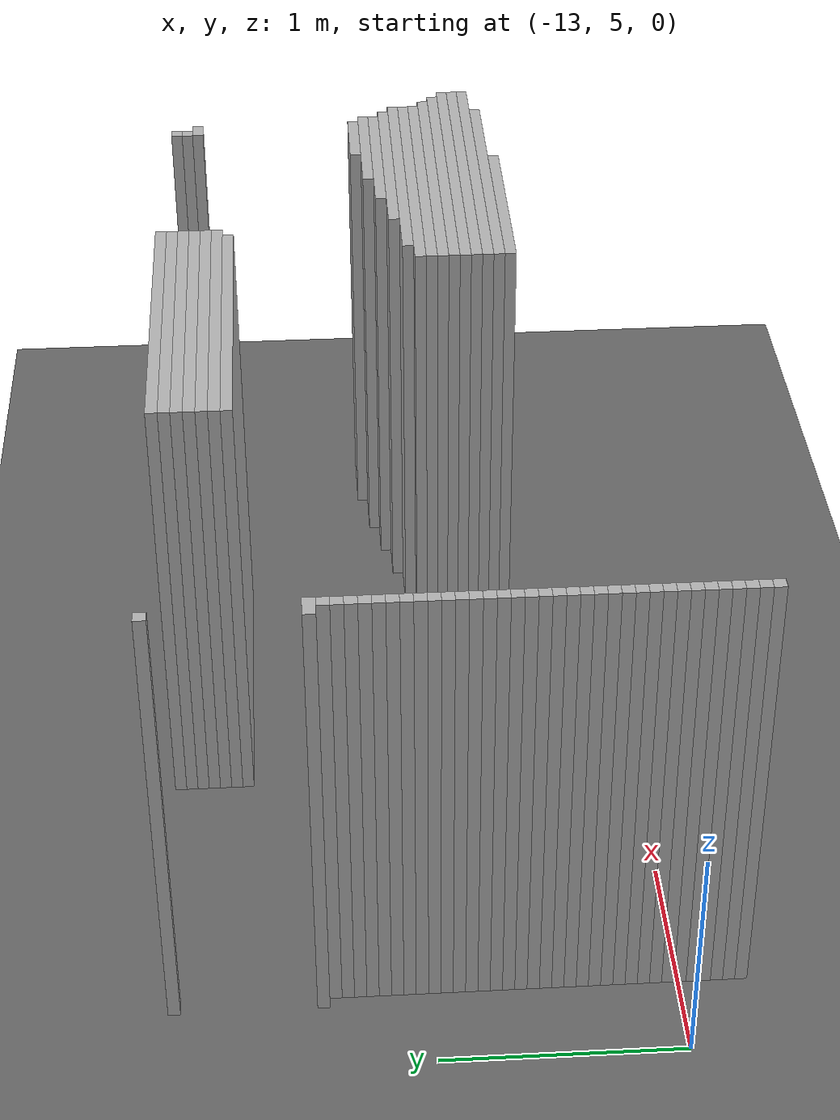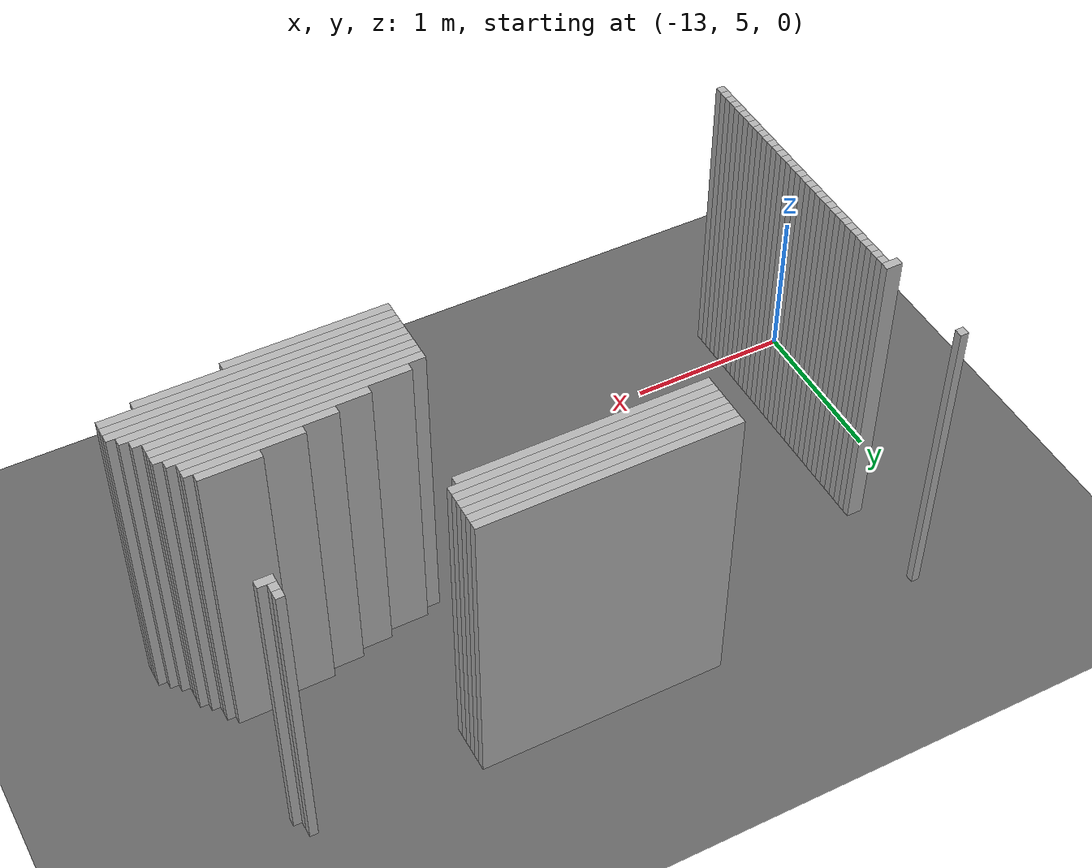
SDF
<sdf version="1.8">
 <world name="real_map">
  <model name="ground">
   <static>true</static>
   <link name="l">
    <collision name="c"><geometry><plane><normal>0 0 1</normal><size>100 100</size></plane></geometry></collision>
    <visual name="v">
     <geometry><plane><normal>0 0 1</normal><size>100 100</size></plane></geometry>
     <material><ambient>0.3 0.3 0.3 1</ambient><diffuse>0.4 0.4 0.4 1</diffuse></material>
    </visual>
   </link>
  </model>
  <model name="walls">
   <static>true</static>
   <link name="w642">
    <pose>-12.666 7.042 1.000 0 0 0</pose>
    <collision name="c"><geometry><box><size>0.050 0.050 2.000</size></box></geometry></collision>
    <visual name="v">
     <geometry><box><size>0.050 0.050 2.000</size></box></geometry>
     <material><ambient>0.7 0.7 0.7 1</ambient><diffuse>0.7 0.7 0.7 1</diffuse></material>
    </visual>
   </link>
   <link name="w643">
    <pose>-10.591 7.042 1.000 0 0 0</pose>
    <collision name="c"><geometry><box><size>1.500 0.050 2.000</size></box></geometry></collision>
    <visual name="v">
     <geometry><box><size>1.500 0.050 2.000</size></box></geometry>
     <material><ambient>0.7 0.7 0.7 1</ambient><diffuse>0.7 0.7 0.7 1</diffuse></material>
    </visual>
   </link>
   <link name="w648">
    <pose>-10.591 6.992 1.000 0 0 0</pose>
    <collision name="c"><geometry><box><size>1.500 0.050 2.000</size></box></geometry></collision>
    <visual name="v">
     <geometry><box><size>1.500 0.050 2.000</size></box></geometry>
     <material><ambient>0.7 0.7 0.7 1</ambient><diffuse>0.7 0.7 0.7 1</diffuse></material>
    </visual>
   </link>
   <link name="w649">
    <pose>-8.866 6.992 1.000 0 0 0</pose>
    <collision name="c"><geometry><box><size>0.050 0.050 2.000</size></box></geometry></collision>
    <visual name="v">
     <geometry><box><size>0.050 0.050 2.000</size></box></geometry>
     <material><ambient>0.7 0.7 0.7 1</ambient><diffuse>0.7 0.7 0.7 1</diffuse></material>
    </visual>
   </link>
   <link name="w653">
    <pose>-10.591 6.942 1.000 0 0 0</pose>
    <collision name="c"><geometry><box><size>1.500 0.050 2.000</size></box></geometry></collision>
    <visual name="v">
     <geometry><box><size>1.500 0.050 2.000</size></box></geometry>
     <material><ambient>0.7 0.7 0.7 1</ambient><diffuse>0.7 0.7 0.7 1</diffuse></material>
    </visual>
   </link>
   <link name="w654">
    <pose>-8.866 6.942 1.000 0 0 0</pose>
    <collision name="c"><geometry><box><size>0.050 0.050 2.000</size></box></geometry></collision>
    <visual name="v">
     <geometry><box><size>0.050 0.050 2.000</size></box></geometry>
     <material><ambient>0.7 0.7 0.7 1</ambient><diffuse>0.7 0.7 0.7 1</diffuse></material>
    </visual>
   </link>
   <link name="w658">
    <pose>-10.591 6.892 1.000 0 0 0</pose>
    <collision name="c"><geometry><box><size>1.500 0.050 2.000</size></box></geometry></collision>
    <visual name="v">
     <geometry><box><size>1.500 0.050 2.000</size></box></geometry>
     <material><ambient>0.7 0.7 0.7 1</ambient><diffuse>0.7 0.7 0.7 1</diffuse></material>
    </visual>
   </link>
   <link name="w659">
    <pose>-8.841 6.892 1.000 0 0 0</pose>
    <collision name="c"><geometry><box><size>0.100 0.050 2.000</size></box></geometry></collision>
    <visual name="v">
     <geometry><box><size>0.100 0.050 2.000</size></box></geometry>
     <material><ambient>0.7 0.7 0.7 1</ambient><diffuse>0.7 0.7 0.7 1</diffuse></material>
    </visual>
   </link>
   <link name="w663">
    <pose>-10.591 6.842 1.000 0 0 0</pose>
    <collision name="c"><geometry><box><size>1.500 0.050 2.000</size></box></geometry></collision>
    <visual name="v">
     <geometry><box><size>1.500 0.050 2.000</size></box></geometry>
     <material><ambient>0.7 0.7 0.7 1</ambient><diffuse>0.7 0.7 0.7 1</diffuse></material>
    </visual>
   </link>
   <link name="w668">
    <pose>-10.591 6.792 1.000 0 0 0</pose>
    <collision name="c"><geometry><box><size>1.500 0.050 2.000</size></box></geometry></collision>
    <visual name="v">
     <geometry><box><size>1.500 0.050 2.000</size></box></geometry>
     <material><ambient>0.7 0.7 0.7 1</ambient><diffuse>0.7 0.7 0.7 1</diffuse></material>
    </visual>
   </link>
   <link name="w673">
    <pose>-10.616 6.742 1.000 0 0 0</pose>
    <collision name="c"><geometry><box><size>1.450 0.050 2.000</size></box></geometry></collision>
    <visual name="v">
     <geometry><box><size>1.450 0.050 2.000</size></box></geometry>
     <material><ambient>0.7 0.7 0.7 1</ambient><diffuse>0.7 0.7 0.7 1</diffuse></material>
    </visual>
   </link>
   <link name="w697">
    <pose>-12.641 6.442 1.000 0 0 0</pose>
    <collision name="c"><geometry><box><size>0.100 0.050 2.000</size></box></geometry></collision>
    <visual name="v">
     <geometry><box><size>0.100 0.050 2.000</size></box></geometry>
     <material><ambient>0.7 0.7 0.7 1</ambient><diffuse>0.7 0.7 0.7 1</diffuse></material>
    </visual>
   </link>
   <link name="w701">
    <pose>-12.616 6.392 1.000 0 0 0</pose>
    <collision name="c"><geometry><box><size>0.050 0.050 2.000</size></box></geometry></collision>
    <visual name="v">
     <geometry><box><size>0.050 0.050 2.000</size></box></geometry>
     <material><ambient>0.7 0.7 0.7 1</ambient><diffuse>0.7 0.7 0.7 1</diffuse></material>
    </visual>
   </link>
   <link name="w705">
    <pose>-12.616 6.342 1.000 0 0 0</pose>
    <collision name="c"><geometry><box><size>0.050 0.050 2.000</size></box></geometry></collision>
    <visual name="v">
     <geometry><box><size>0.050 0.050 2.000</size></box></geometry>
     <material><ambient>0.7 0.7 0.7 1</ambient><diffuse>0.7 0.7 0.7 1</diffuse></material>
    </visual>
   </link>
   <link name="w709">
    <pose>-12.616 6.292 1.000 0 0 0</pose>
    <collision name="c"><geometry><box><size>0.050 0.050 2.000</size></box></geometry></collision>
    <visual name="v">
     <geometry><box><size>0.050 0.050 2.000</size></box></geometry>
     <material><ambient>0.7 0.7 0.7 1</ambient><diffuse>0.7 0.7 0.7 1</diffuse></material>
    </visual>
   </link>
   <link name="w713">
    <pose>-12.616 6.242 1.000 0 0 0</pose>
    <collision name="c"><geometry><box><size>0.050 0.050 2.000</size></box></geometry></collision>
    <visual name="v">
     <geometry><box><size>0.050 0.050 2.000</size></box></geometry>
     <material><ambient>0.7 0.7 0.7 1</ambient><diffuse>0.7 0.7 0.7 1</diffuse></material>
    </visual>
   </link>
   <link name="w717">
    <pose>-12.616 6.192 1.000 0 0 0</pose>
    <collision name="c"><geometry><box><size>0.050 0.050 2.000</size></box></geometry></collision>
    <visual name="v">
     <geometry><box><size>0.050 0.050 2.000</size></box></geometry>
     <material><ambient>0.7 0.7 0.7 1</ambient><diffuse>0.7 0.7 0.7 1</diffuse></material>
    </visual>
   </link>
   <link name="w721">
    <pose>-12.616 6.142 1.000 0 0 0</pose>
    <collision name="c"><geometry><box><size>0.050 0.050 2.000</size></box></geometry></collision>
    <visual name="v">
     <geometry><box><size>0.050 0.050 2.000</size></box></geometry>
     <material><ambient>0.7 0.7 0.7 1</ambient><diffuse>0.7 0.7 0.7 1</diffuse></material>
    </visual>
   </link>
   <link name="w722">
    <pose>-8.966 6.142 1.000 0 0 0</pose>
    <collision name="c"><geometry><box><size>0.350 0.050 2.000</size></box></geometry></collision>
    <visual name="v">
     <geometry><box><size>0.350 0.050 2.000</size></box></geometry>
     <material><ambient>0.7 0.7 0.7 1</ambient><diffuse>0.7 0.7 0.7 1</diffuse></material>
    </visual>
   </link>
   <link name="w725">
    <pose>-12.616 6.092 1.000 0 0 0</pose>
    <collision name="c"><geometry><box><size>0.050 0.050 2.000</size></box></geometry></collision>
    <visual name="v">
     <geometry><box><size>0.050 0.050 2.000</size></box></geometry>
     <material><ambient>0.7 0.7 0.7 1</ambient><diffuse>0.7 0.7 0.7 1</diffuse></material>
    </visual>
   </link>
   <link name="w726">
    <pose>-9.066 6.092 1.000 0 0 0</pose>
    <collision name="c"><geometry><box><size>0.650 0.050 2.000</size></box></geometry></collision>
    <visual name="v">
     <geometry><box><size>0.650 0.050 2.000</size></box></geometry>
     <material><ambient>0.7 0.7 0.7 1</ambient><diffuse>0.7 0.7 0.7 1</diffuse></material>
    </visual>
   </link>
   <link name="w729">
    <pose>-12.616 6.042 1.000 0 0 0</pose>
    <collision name="c"><geometry><box><size>0.050 0.050 2.000</size></box></geometry></collision>
    <visual name="v">
     <geometry><box><size>0.050 0.050 2.000</size></box></geometry>
     <material><ambient>0.7 0.7 0.7 1</ambient><diffuse>0.7 0.7 0.7 1</diffuse></material>
    </visual>
   </link>
   <link name="w730">
    <pose>-9.166 6.042 1.000 0 0 0</pose>
    <collision name="c"><geometry><box><size>0.850 0.050 2.000</size></box></geometry></collision>
    <visual name="v">
     <geometry><box><size>0.850 0.050 2.000</size></box></geometry>
     <material><ambient>0.7 0.7 0.7 1</ambient><diffuse>0.7 0.7 0.7 1</diffuse></material>
    </visual>
   </link>
   <link name="w733">
    <pose>-12.616 5.992 1.000 0 0 0</pose>
    <collision name="c"><geometry><box><size>0.050 0.050 2.000</size></box></geometry></collision>
    <visual name="v">
     <geometry><box><size>0.050 0.050 2.000</size></box></geometry>
     <material><ambient>0.7 0.7 0.7 1</ambient><diffuse>0.7 0.7 0.7 1</diffuse></material>
    </visual>
   </link>
   <link name="w734">
    <pose>-9.241 5.992 1.000 0 0 0</pose>
    <collision name="c"><geometry><box><size>1.100 0.050 2.000</size></box></geometry></collision>
    <visual name="v">
     <geometry><box><size>1.100 0.050 2.000</size></box></geometry>
     <material><ambient>0.7 0.7 0.7 1</ambient><diffuse>0.7 0.7 0.7 1</diffuse></material>
    </visual>
   </link>
   <link name="w737">
    <pose>-12.616 5.942 1.000 0 0 0</pose>
    <collision name="c"><geometry><box><size>0.050 0.050 2.000</size></box></geometry></collision>
    <visual name="v">
     <geometry><box><size>0.050 0.050 2.000</size></box></geometry>
     <material><ambient>0.7 0.7 0.7 1</ambient><diffuse>0.7 0.7 0.7 1</diffuse></material>
    </visual>
   </link>
   <link name="w738">
    <pose>-9.341 5.942 1.000 0 0 0</pose>
    <collision name="c"><geometry><box><size>1.400 0.050 2.000</size></box></geometry></collision>
    <visual name="v">
     <geometry><box><size>1.400 0.050 2.000</size></box></geometry>
     <material><ambient>0.7 0.7 0.7 1</ambient><diffuse>0.7 0.7 0.7 1</diffuse></material>
    </visual>
   </link>
   <link name="w741">
    <pose>-12.616 5.892 1.000 0 0 0</pose>
    <collision name="c"><geometry><box><size>0.050 0.050 2.000</size></box></geometry></collision>
    <visual name="v">
     <geometry><box><size>0.050 0.050 2.000</size></box></geometry>
     <material><ambient>0.7 0.7 0.7 1</ambient><diffuse>0.7 0.7 0.7 1</diffuse></material>
    </visual>
   </link>
   <link name="w742">
    <pose>-9.391 5.892 1.000 0 0 0</pose>
    <collision name="c"><geometry><box><size>1.500 0.050 2.000</size></box></geometry></collision>
    <visual name="v">
     <geometry><box><size>1.500 0.050 2.000</size></box></geometry>
     <material><ambient>0.7 0.7 0.7 1</ambient><diffuse>0.7 0.7 0.7 1</diffuse></material>
    </visual>
   </link>
   <link name="w745">
    <pose>-12.616 5.842 1.000 0 0 0</pose>
    <collision name="c"><geometry><box><size>0.050 0.050 2.000</size></box></geometry></collision>
    <visual name="v">
     <geometry><box><size>0.050 0.050 2.000</size></box></geometry>
     <material><ambient>0.7 0.7 0.7 1</ambient><diffuse>0.7 0.7 0.7 1</diffuse></material>
    </visual>
   </link>
   <link name="w746">
    <pose>-9.391 5.842 1.000 0 0 0</pose>
    <collision name="c"><geometry><box><size>1.500 0.050 2.000</size></box></geometry></collision>
    <visual name="v">
     <geometry><box><size>1.500 0.050 2.000</size></box></geometry>
     <material><ambient>0.7 0.7 0.7 1</ambient><diffuse>0.7 0.7 0.7 1</diffuse></material>
    </visual>
   </link>
   <link name="w749">
    <pose>-12.616 5.792 1.000 0 0 0</pose>
    <collision name="c"><geometry><box><size>0.050 0.050 2.000</size></box></geometry></collision>
    <visual name="v">
     <geometry><box><size>0.050 0.050 2.000</size></box></geometry>
     <material><ambient>0.7 0.7 0.7 1</ambient><diffuse>0.7 0.7 0.7 1</diffuse></material>
    </visual>
   </link>
   <link name="w750">
    <pose>-9.366 5.792 1.000 0 0 0</pose>
    <collision name="c"><geometry><box><size>1.550 0.050 2.000</size></box></geometry></collision>
    <visual name="v">
     <geometry><box><size>1.550 0.050 2.000</size></box></geometry>
     <material><ambient>0.7 0.7 0.7 1</ambient><diffuse>0.7 0.7 0.7 1</diffuse></material>
    </visual>
   </link>
   <link name="w753">
    <pose>-12.616 5.742 1.000 0 0 0</pose>
    <collision name="c"><geometry><box><size>0.050 0.050 2.000</size></box></geometry></collision>
    <visual name="v">
     <geometry><box><size>0.050 0.050 2.000</size></box></geometry>
     <material><ambient>0.7 0.7 0.7 1</ambient><diffuse>0.7 0.7 0.7 1</diffuse></material>
    </visual>
   </link>
   <link name="w754">
    <pose>-9.341 5.742 1.000 0 0 0</pose>
    <collision name="c"><geometry><box><size>1.600 0.050 2.000</size></box></geometry></collision>
    <visual name="v">
     <geometry><box><size>1.600 0.050 2.000</size></box></geometry>
     <material><ambient>0.7 0.7 0.7 1</ambient><diffuse>0.7 0.7 0.7 1</diffuse></material>
    </visual>
   </link>
   <link name="w757">
    <pose>-12.616 5.692 1.000 0 0 0</pose>
    <collision name="c"><geometry><box><size>0.050 0.050 2.000</size></box></geometry></collision>
    <visual name="v">
     <geometry><box><size>0.050 0.050 2.000</size></box></geometry>
     <material><ambient>0.7 0.7 0.7 1</ambient><diffuse>0.7 0.7 0.7 1</diffuse></material>
    </visual>
   </link>
   <link name="w758">
    <pose>-9.316 5.692 1.000 0 0 0</pose>
    <collision name="c"><geometry><box><size>1.650 0.050 2.000</size></box></geometry></collision>
    <visual name="v">
     <geometry><box><size>1.650 0.050 2.000</size></box></geometry>
     <material><ambient>0.7 0.7 0.7 1</ambient><diffuse>0.7 0.7 0.7 1</diffuse></material>
    </visual>
   </link>
   <link name="w761">
    <pose>-12.616 5.642 1.000 0 0 0</pose>
    <collision name="c"><geometry><box><size>0.050 0.050 2.000</size></box></geometry></collision>
    <visual name="v">
     <geometry><box><size>0.050 0.050 2.000</size></box></geometry>
     <material><ambient>0.7 0.7 0.7 1</ambient><diffuse>0.7 0.7 0.7 1</diffuse></material>
    </visual>
   </link>
   <link name="w762">
    <pose>-9.316 5.642 1.000 0 0 0</pose>
    <collision name="c"><geometry><box><size>1.650 0.050 2.000</size></box></geometry></collision>
    <visual name="v">
     <geometry><box><size>1.650 0.050 2.000</size></box></geometry>
     <material><ambient>0.7 0.7 0.7 1</ambient><diffuse>0.7 0.7 0.7 1</diffuse></material>
    </visual>
   </link>
   <link name="w765">
    <pose>-12.616 5.592 1.000 0 0 0</pose>
    <collision name="c"><geometry><box><size>0.050 0.050 2.000</size></box></geometry></collision>
    <visual name="v">
     <geometry><box><size>0.050 0.050 2.000</size></box></geometry>
     <material><ambient>0.7 0.7 0.7 1</ambient><diffuse>0.7 0.7 0.7 1</diffuse></material>
    </visual>
   </link>
   <link name="w766">
    <pose>-9.316 5.592 1.000 0 0 0</pose>
    <collision name="c"><geometry><box><size>1.650 0.050 2.000</size></box></geometry></collision>
    <visual name="v">
     <geometry><box><size>1.650 0.050 2.000</size></box></geometry>
     <material><ambient>0.7 0.7 0.7 1</ambient><diffuse>0.7 0.7 0.7 1</diffuse></material>
    </visual>
   </link>
   <link name="w769">
    <pose>-12.616 5.542 1.000 0 0 0</pose>
    <collision name="c"><geometry><box><size>0.050 0.050 2.000</size></box></geometry></collision>
    <visual name="v">
     <geometry><box><size>0.050 0.050 2.000</size></box></geometry>
     <material><ambient>0.7 0.7 0.7 1</ambient><diffuse>0.7 0.7 0.7 1</diffuse></material>
    </visual>
   </link>
   <link name="w770">
    <pose>-9.416 5.542 1.000 0 0 0</pose>
    <collision name="c"><geometry><box><size>1.450 0.050 2.000</size></box></geometry></collision>
    <visual name="v">
     <geometry><box><size>1.450 0.050 2.000</size></box></geometry>
     <material><ambient>0.7 0.7 0.7 1</ambient><diffuse>0.7 0.7 0.7 1</diffuse></material>
    </visual>
   </link>
   <link name="w774">
    <pose>-12.616 5.492 1.000 0 0 0</pose>
    <collision name="c"><geometry><box><size>0.050 0.050 2.000</size></box></geometry></collision>
    <visual name="v">
     <geometry><box><size>0.050 0.050 2.000</size></box></geometry>
     <material><ambient>0.7 0.7 0.7 1</ambient><diffuse>0.7 0.7 0.7 1</diffuse></material>
    </visual>
   </link>
   <link name="w775">
    <pose>-9.666 5.492 1.000 0 0 0</pose>
    <collision name="c"><geometry><box><size>0.950 0.050 2.000</size></box></geometry></collision>
    <visual name="v">
     <geometry><box><size>0.950 0.050 2.000</size></box></geometry>
     <material><ambient>0.7 0.7 0.7 1</ambient><diffuse>0.7 0.7 0.7 1</diffuse></material>
    </visual>
   </link>
   <link name="w779">
    <pose>-12.616 5.442 1.000 0 0 0</pose>
    <collision name="c"><geometry><box><size>0.050 0.050 2.000</size></box></geometry></collision>
    <visual name="v">
     <geometry><box><size>0.050 0.050 2.000</size></box></geometry>
     <material><ambient>0.7 0.7 0.7 1</ambient><diffuse>0.7 0.7 0.7 1</diffuse></material>
    </visual>
   </link>
   <link name="w783">
    <pose>-12.616 5.392 1.000 0 0 0</pose>
    <collision name="c"><geometry><box><size>0.050 0.050 2.000</size></box></geometry></collision>
    <visual name="v">
     <geometry><box><size>0.050 0.050 2.000</size></box></geometry>
     <material><ambient>0.7 0.7 0.7 1</ambient><diffuse>0.7 0.7 0.7 1</diffuse></material>
    </visual>
   </link>
   <link name="w787">
    <pose>-12.616 5.342 1.000 0 0 0</pose>
    <collision name="c"><geometry><box><size>0.050 0.050 2.000</size></box></geometry></collision>
    <visual name="v">
     <geometry><box><size>0.050 0.050 2.000</size></box></geometry>
     <material><ambient>0.7 0.7 0.7 1</ambient><diffuse>0.7 0.7 0.7 1</diffuse></material>
    </visual>
   </link>
   <link name="w791">
    <pose>-12.616 5.292 1.000 0 0 0</pose>
    <collision name="c"><geometry><box><size>0.050 0.050 2.000</size></box></geometry></collision>
    <visual name="v">
     <geometry><box><size>0.050 0.050 2.000</size></box></geometry>
     <material><ambient>0.7 0.7 0.7 1</ambient><diffuse>0.7 0.7 0.7 1</diffuse></material>
    </visual>
   </link>
   <link name="w795">
    <pose>-12.616 5.242 1.000 0 0 0</pose>
    <collision name="c"><geometry><box><size>0.050 0.050 2.000</size></box></geometry></collision>
    <visual name="v">
     <geometry><box><size>0.050 0.050 2.000</size></box></geometry>
     <material><ambient>0.7 0.7 0.7 1</ambient><diffuse>0.7 0.7 0.7 1</diffuse></material>
    </visual>
   </link>
   <link name="w799">
    <pose>-12.616 5.192 1.000 0 0 0</pose>
    <collision name="c"><geometry><box><size>0.050 0.050 2.000</size></box></geometry></collision>
    <visual name="v">
     <geometry><box><size>0.050 0.050 2.000</size></box></geometry>
     <material><ambient>0.7 0.7 0.7 1</ambient><diffuse>0.7 0.7 0.7 1</diffuse></material>
    </visual>
   </link>
   <link name="w803">
    <pose>-12.616 5.142 1.000 0 0 0</pose>
    <collision name="c"><geometry><box><size>0.050 0.050 2.000</size></box></geometry></collision>
    <visual name="v">
     <geometry><box><size>0.050 0.050 2.000</size></box></geometry>
     <material><ambient>0.7 0.7 0.7 1</ambient><diffuse>0.7 0.7 0.7 1</diffuse></material>
    </visual>
   </link>
   <link name="w807">
    <pose>-12.616 5.092 1.000 0 0 0</pose>
    <collision name="c"><geometry><box><size>0.050 0.050 2.000</size></box></geometry></collision>
    <visual name="v">
     <geometry><box><size>0.050 0.050 2.000</size></box></geometry>
     <material><ambient>0.7 0.7 0.7 1</ambient><diffuse>0.7 0.7 0.7 1</diffuse></material>
    </visual>
   </link>
   <link name="w811">
    <pose>-12.616 5.042 1.000 0 0 0</pose>
    <collision name="c"><geometry><box><size>0.050 0.050 2.000</size></box></geometry></collision>
    <visual name="v">
     <geometry><box><size>0.050 0.050 2.000</size></box></geometry>
     <material><ambient>0.7 0.7 0.7 1</ambient><diffuse>0.7 0.7 0.7 1</diffuse></material>
    </visual>
   </link>
   <link name="w815">
    <pose>-12.616 4.992 1.000 0 0 0</pose>
    <collision name="c"><geometry><box><size>0.050 0.050 2.000</size></box></geometry></collision>
    <visual name="v">
     <geometry><box><size>0.050 0.050 2.000</size></box></geometry>
     <material><ambient>0.7 0.7 0.7 1</ambient><diffuse>0.7 0.7 0.7 1</diffuse></material>
    </visual>
   </link>
   <link name="w819">
    <pose>-12.616 4.942 1.000 0 0 0</pose>
    <collision name="c"><geometry><box><size>0.050 0.050 2.000</size></box></geometry></collision>
    <visual name="v">
     <geometry><box><size>0.050 0.050 2.000</size></box></geometry>
     <material><ambient>0.7 0.7 0.7 1</ambient><diffuse>0.7 0.7 0.7 1</diffuse></material>
    </visual>
   </link>
   <link name="w823">
    <pose>-12.616 4.892 1.000 0 0 0</pose>
    <collision name="c"><geometry><box><size>0.050 0.050 2.000</size></box></geometry></collision>
    <visual name="v">
     <geometry><box><size>0.050 0.050 2.000</size></box></geometry>
     <material><ambient>0.7 0.7 0.7 1</ambient><diffuse>0.7 0.7 0.7 1</diffuse></material>
    </visual>
   </link>
   <link name="w827">
    <pose>-12.616 4.842 1.000 0 0 0</pose>
    <collision name="c"><geometry><box><size>0.050 0.050 2.000</size></box></geometry></collision>
    <visual name="v">
     <geometry><box><size>0.050 0.050 2.000</size></box></geometry>
     <material><ambient>0.7 0.7 0.7 1</ambient><diffuse>0.7 0.7 0.7 1</diffuse></material>
    </visual>
   </link>
   <link name="w831">
    <pose>-12.616 4.792 1.000 0 0 0</pose>
    <collision name="c"><geometry><box><size>0.050 0.050 2.000</size></box></geometry></collision>
    <visual name="v">
     <geometry><box><size>0.050 0.050 2.000</size></box></geometry>
     <material><ambient>0.7 0.7 0.7 1</ambient><diffuse>0.7 0.7 0.7 1</diffuse></material>
    </visual>
   </link>
   <link name="w835">
    <pose>-12.616 4.742 1.000 0 0 0</pose>
    <collision name="c"><geometry><box><size>0.050 0.050 2.000</size></box></geometry></collision>
    <visual name="v">
     <geometry><box><size>0.050 0.050 2.000</size></box></geometry>
     <material><ambient>0.7 0.7 0.7 1</ambient><diffuse>0.7 0.7 0.7 1</diffuse></material>
    </visual>
   </link>
  </model>
 </world>
</sdf>
